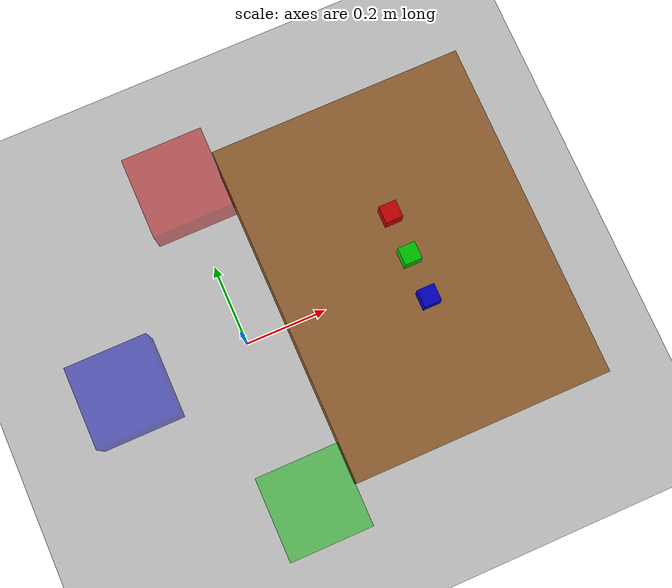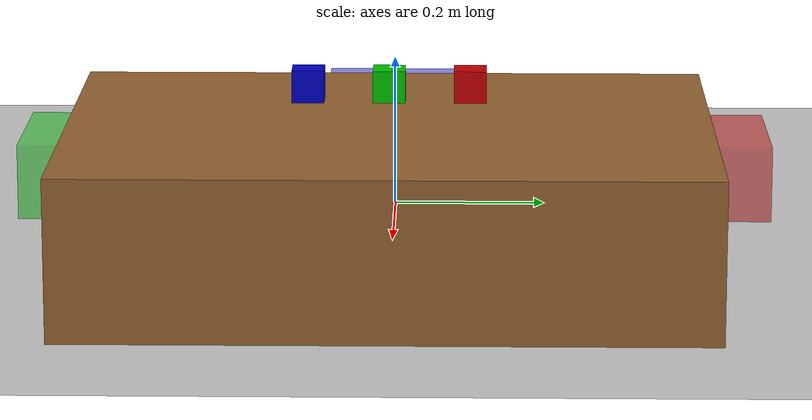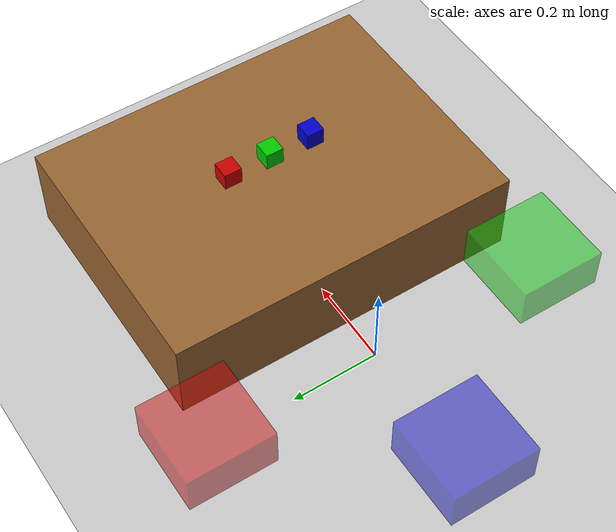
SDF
<?xml version="1.0" ?>
<sdf version="1.8">
  <world name="sorting_world">
    <!-- Fisica di base -->
    <physics name="1ms" type="ignored">
      <max_step_size>0.001</max_step_size>
      <real_time_factor>1.0</real_time_factor>
    </physics>
    <plugin filename="gz-sim-physics-system" name="gz::sim::systems::Physics"/>
    <plugin filename="gz-sim-sensors-system" name="gz::sim::systems::Sensors">
      <render_engine>ogre</render_engine>
    </plugin>
    <plugin filename="gz-sim-scene-broadcaster-system" name="gz::sim::systems::SceneBroadcaster"/>
    <plugin filename="gz-sim-user-commands-system" name="gz::sim::systems::UserCommands"/>

    <light type="directional" name="sun">
      <cast_shadows>false</cast_shadows>
      <pose>0 0 10 0 0 0</pose>
      <diffuse>0.8 0.8 0.8 1</diffuse>
      <specular>0.2 0.2 0.2 1</specular>
      <attenuation>
        <range>1000</range>
        <constant>0.9</constant>
        <linear>0.01</linear>
        <quadratic>0.001</quadratic>
      </attenuation>
      <direction>-0.5 0.1 -0.9</direction>
    </light>

    <model name="ground_plane">
      <static>true</static>
      <link name="link">
        <collision name="collision">
          <geometry><plane><normal>0 0 1</normal><size>10 10</size></plane></geometry>
        </collision>
        <visual name="visual">
          <geometry><plane><normal>0 0 1</normal><size>10 10</size></plane></geometry>
          <material><ambient>0.8 0.8 0.8 1</ambient><diffuse>0.8 0.8 0.8 1</diffuse></material>
        </visual>
      </link>
    </model>

    <!-- TAVOLO -->
    <model name="tavolo">
      <static>true</static>
      <pose>0.4 0 0.1 0 0 0</pose>
      <link name="link">
        <collision name="collision"><geometry><box><size>0.6 0.8 0.2</size></box></geometry></collision>
        <visual name="visual">
          <geometry><box><size>0.6 0.8 0.2</size></box></geometry>
          <material><ambient>0.6 0.4 0.2 1</ambient><diffuse>0.6 0.4 0.2 1</diffuse></material>
        </visual>
      </link>
    </model>

    <!-- AREE DI SCARICO (Bins) -->
    <!-- Cesto Rosso -->
    <model name="bin_rosso">
      <static>true</static><pose>0.0 0.4 0.05 0 0 0</pose>
      <link name="link">
        <visual name="visual"><geometry><box><size>0.2 0.2 0.1</size></box></geometry><material><ambient>0.8 0 0 0.5</ambient><diffuse>0.8 0 0 0.5</diffuse></material></visual>
      </link>
    </model>
    <!-- Cesto Verde -->
    <model name="bin_verde">
      <static>true</static><pose>0.0 -0.4 0.05 0 0 0</pose>
      <link name="link">
        <visual name="visual"><geometry><box><size>0.2 0.2 0.1</size></box></geometry><material><ambient>0 0.8 0 0.5</ambient><diffuse>0 0.8 0 0.5</diffuse></material></visual>
      </link>
    </model>
    <!-- Cesto Blu -->
    <model name="bin_blu">
      <static>true</static><pose>-0.3 0.0 0.05 0 0 0</pose>
      <link name="link">
        <visual name="visual"><geometry><box><size>0.2 0.2 0.1</size></box></geometry><material><ambient>0 0 0.8 0.5</ambient><diffuse>0 0 0.8 0.5</diffuse></material></visual>
      </link>
    </model>

    <!-- CUBI DA SMISTARE -->
    <model name="cubo_rosso">
      <pose>0.4 0.1 0.25 0 0 0</pose>
      <link name="link">
        <collision name="col"><geometry><box><size>0.04 0.04 0.04</size></box></geometry>
          <surface><friction><ode><mu>1.0</mu><mu2>1.0</mu2></ode></friction></surface>
        </collision>
        <visual name="vis"><geometry><box><size>0.04 0.04 0.04</size></box></geometry><material><ambient>0.8 0 0 1</ambient><diffuse>0.8 0 0 1</diffuse></material></visual>
        <inertial><mass>0.05</mass><inertia><ixx>0.00001</ixx><iyy>0.00001</iyy><izz>0.00001</izz></inertia></inertial>
      </link>
    </model>

    <model name="cubo_verde">
      <pose>0.4 0.0 0.25 0 0 0</pose>
      <link name="link">
        <collision name="col"><geometry><box><size>0.04 0.04 0.04</size></box></geometry>
          <surface><friction><ode><mu>1.0</mu><mu2>1.0</mu2></ode></friction></surface>
        </collision>
        <visual name="vis"><geometry><box><size>0.04 0.04 0.04</size></box></geometry><material><ambient>0 0.8 0 1</ambient><diffuse>0 0.8 0 1</diffuse></material></visual>
        <inertial><mass>0.05</mass><inertia><ixx>0.00001</ixx><iyy>0.00001</iyy><izz>0.00001</izz></inertia></inertial>
      </link>
    </model>

    <model name="cubo_blu">
      <pose>0.4 -0.1 0.25 0 0 0</pose>
      <link name="link">
        <collision name="col"><geometry><box><size>0.04 0.04 0.04</size></box></geometry>
          <surface><friction><ode><mu>1.0</mu><mu2>1.0</mu2></ode></friction></surface>
        </collision>
        <visual name="vis"><geometry><box><size>0.04 0.04 0.04</size></box></geometry><material><ambient>0 0 0.8 1</ambient><diffuse>0 0 0.8 1</diffuse></material></visual>
        <inertial><mass>0.05</mass><inertia><ixx>0.00001</ixx><iyy>0.00001</iyy><izz>0.00001</izz></inertia></inertial>
      </link>
    </model>

  </world>
</sdf>
